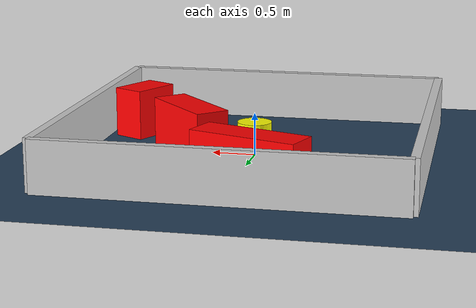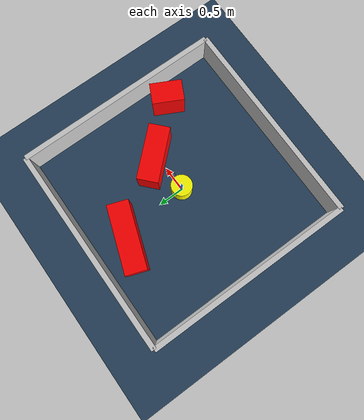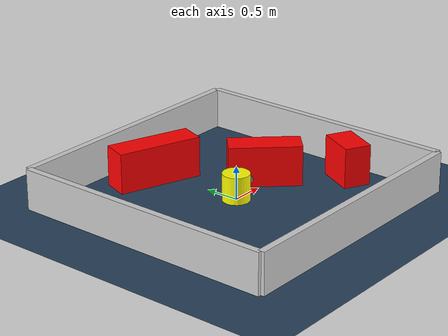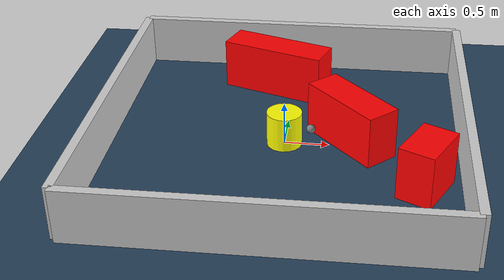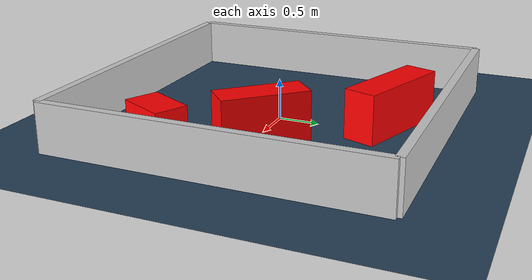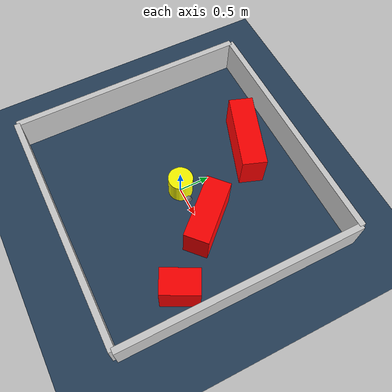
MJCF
<?xml version="1.0" ?>
<mujoco model="generated_environment">
  <option timestep="0.01" integrator="RK4" cone="elliptic"/>
  <default>
    <geom density="1"/>
  </default>
  <asset>
    <texture builtin="gradient" height="3072" rgb1="0.3 0.5 0.7" rgb2="0 0 0" type="skybox" width="512"/>
    <texture builtin="checker" height="300" mark="edge" markrgb="0.8 0.8 0.8" name="groundplane" rgb1="0.2 0.3 0.4" rgb2="0.1 0.2 0.3" type="2d" width="300"/>
    <material name="groundplane" reflectance="0.2" texrepeat="5 5" texture="groundplane" texuniform="true"/>
    <material name="robot" rgba="0.0 1.0 0.0 1"/>
  </asset>
  <worldbody>
    <light dir="0 0 -1" directional="true" pos="0 0 1.5"/>
    <geom condim="4" friction="1.0 0.005 0.001" material="groundplane" name="floor" size="0 0 0.05" type="plane"/>
    <body name="walls">
      <geom name="wall_1" condim="4" pos="-2.0 0.0 0.3" rgba="0.800000011920929 0.800000011920929 0.800000011920929 1.0" size="0.05 2.0 0.3" type="box"/>
      <geom name="wall_2" condim="4" pos="2.0 0.0 0.3" rgba="0.800000011920929 0.800000011920929 0.800000011920929 1.0" size="0.05 2.0 0.3" type="box"/>
      <geom name="wall_3" condim="4" pos="0.0 -2.0 0.3" rgba="0.800000011920929 0.800000011920929 0.800000011920929 1.0" size="2.0 0.05 0.3" type="box"/>
      <geom name="wall_4" condim="4" pos="0.0 2.0 0.3" rgba="0.800000011920929 0.800000011920929 0.800000011920929 1.0" size="2.0 0.05 0.3" type="box"/>
    </body>
    <body name="robot">
      <joint name="joint_x" type="slide" pos="0 0 0" axis="1 0 0"/>
      <joint name="joint_y" type="slide" pos="0 0 0" axis="0 1 0"/>
      <geom name="robot" type="sphere" pos="0.3 0.0 0.2" size="0.05" mass="5." friction="1.0 0.005 0.0001" condim="4" rgba="0.5 0.5 0.5 1.0"/>
      <site name="sensor_ball"/>
    </body>
    <body name="obstacle_movable_1">
      <geom name="obstacle_movable_1" condim="4" pos="0.0 0.0 0.2" euler="0 0 0.0" friction="1.0 0.005 0.001" rgba="1.0 1.0 0.0 1.0" size="0.2 0.2 0.0" type="cylinder" mass="0.1"/>
      <joint type="free"/>
    </body>
    <body name="obstacle_2_static">
      <geom name="obstacle_2_static" condim="4" pos="-0.21520588432717758 1.3257507971152627 0.3" euler="0 0 340.73048679024146" friction="1.0 0.005 0.001" rgba="1 0 0 1" size="0.6328811359618138 0.2 0.3" type="box"/>
    </body>
    <body name="obstacle_3_static">
      <geom name="obstacle_3_static" condim="4" pos="1.5560440059154395 -0.7842344658385005 0.3" euler="0 0 62.978023270239404" friction="1.0 0.005 0.001" rgba="1 0 0 1" size="0.30057559293050956 0.2 0.3" type="box"/>
    </body>
    <body name="obstacle_4_static">
      <geom name="obstacle_4_static" condim="4" pos="0.7452154087963028 0.08621173786901726 0.3" euler="0 0 132.75078792649515" friction="1.0 0.005 0.001" rgba="1 0 0 1" size="0.5269531403948531 0.2 0.3" type="box"/>
    </body>
  </worldbody>
  <actuator>
    <motor name="actuator_x" joint="joint_x" gear="1" ctrlrange="-1 1"/>
    <motor name="actuator_y" joint="joint_y" gear="1" ctrlrange="-1 1"/>
  </actuator>
</mujoco>
